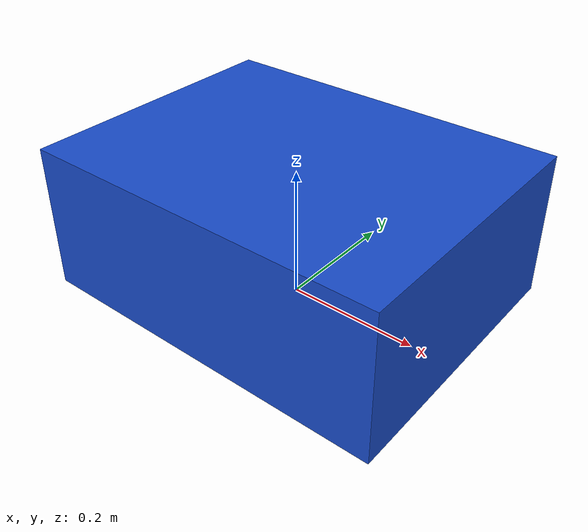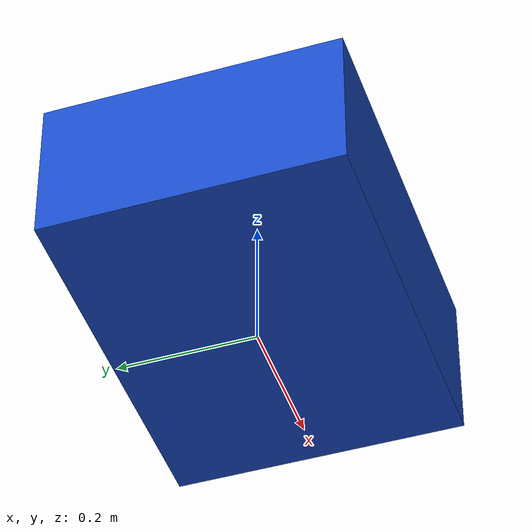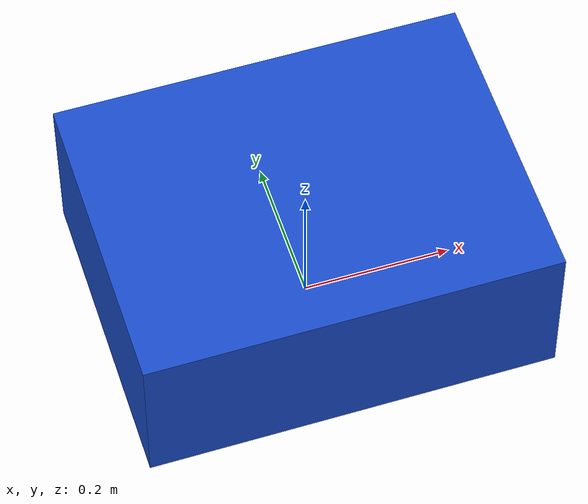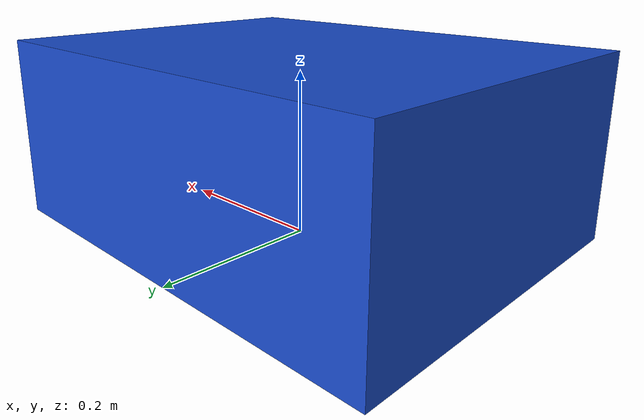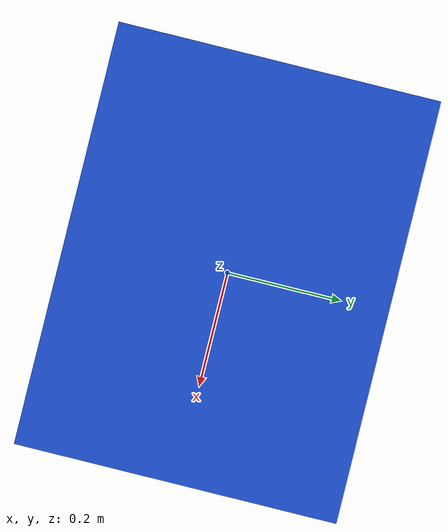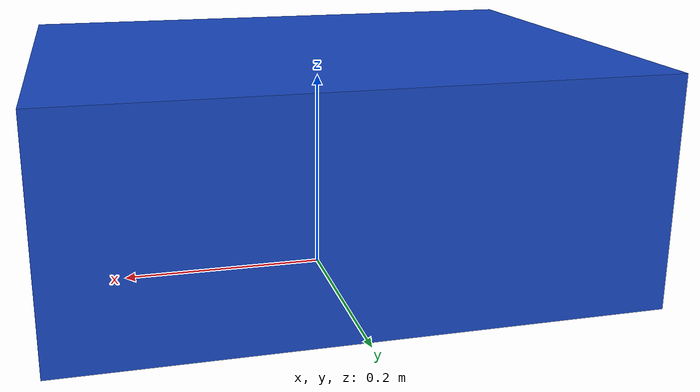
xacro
<?xml version="1.0"?>
<robot xmlns:xacro="http://www.ros.org/wiki/xacro" name="fusion_mobile_robot">
  <xacro:include filename="$(find navigation_bringup)/urdf/sensors.xacro"/>
  <xacro:include filename="$(find navigation_bringup)/urdf/gazebo_plugins.xacro"/>

  <link name="base_footprint"/>
  <joint name="base_footprint_joint" type="fixed">
    <parent link="base_footprint"/>
    <child link="base_link"/>
    <origin xyz="0 0 0.12" rpy="0 0 0"/>
  </joint>
  <link name="base_link">
    <visual>
      <geometry><box size="0.55 0.42 0.22"/></geometry>
      <material name="blue"><color rgba="0.1 0.3 0.8 1"/></material>
    </visual>
    <collision><geometry><box size="0.55 0.42 0.22"/></geometry></collision>
    <inertial>
      <mass value="18.0"/>
      <inertia ixx="0.35" ixy="0" ixz="0" iyy="0.48" iyz="0" izz="0.62"/>
    </inertial>
  </link>

  <xacro:sensor_frames parent="base_link"/>
  <xacro:gazebo_materials/>
</robot>

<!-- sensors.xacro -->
<robot xmlns:xacro="http://www.ros.org/wiki/xacro">
  <xacro:macro name="sensor_frames" params="parent">
    <link name="velodyne"/>
    <joint name="velodyne_joint" type="fixed">
      <parent link="${parent}"/>
      <child link="velodyne"/>
      <origin xyz="0.10 0 0.45" rpy="0 0 0"/>
    </joint>
    <link name="camera_optical_frame"/>
    <joint name="camera_joint" type="fixed">
      <parent link="${parent}"/>
      <child link="camera_optical_frame"/>
      <origin xyz="0.24 0 0.36" rpy="-1.5708 0 -1.5708"/>
    </joint>
    <link name="laser_frame"/>
    <joint name="laser_joint" type="fixed">
      <parent link="${parent}"/>
      <child link="laser_frame"/>
      <origin xyz="0.20 0 0.20" rpy="0 0 0"/>
    </joint>
  </xacro:macro>
</robot>
